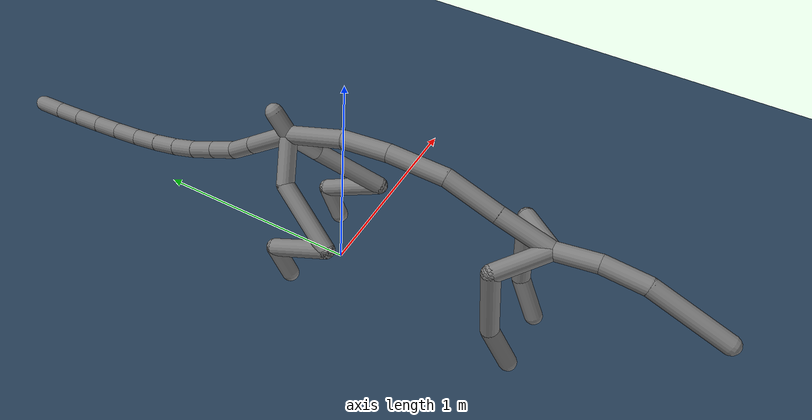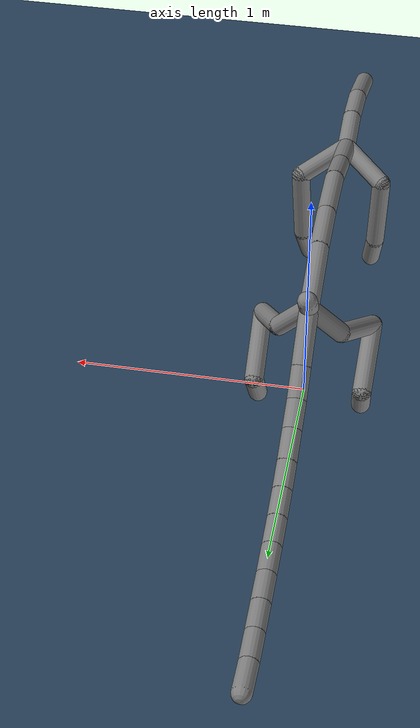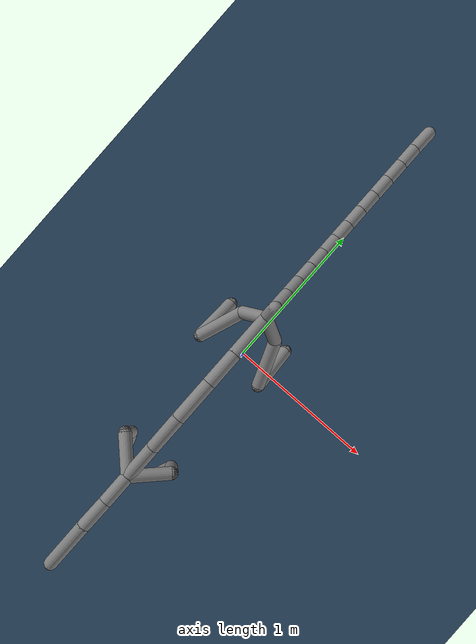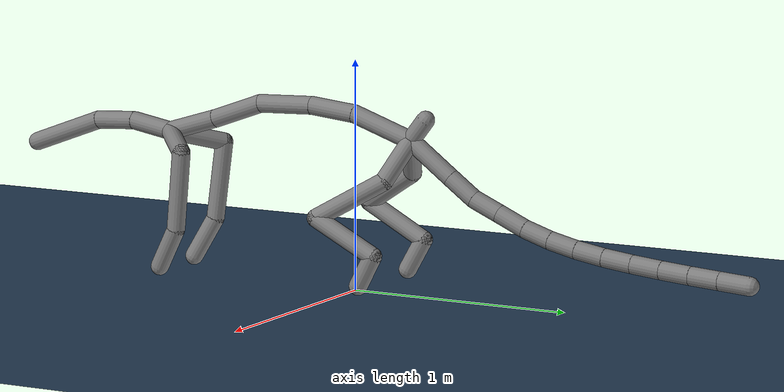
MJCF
<mujoco model="unnamed_model">
  <compiler angle="degree"/>
  <option timestep="0.001" integrator="implicitfast"/>
  <default>
    <default class="/">
      <tendon range="-1 1"/>
      <general ctrllimited="true" forcelimited="false" ctrlrange="-1 1" gainprm="10"/>
    </default>
  </default>
  <asset>
    <texture name="grid" type="2d" builtin="checker" rgb1="0.10000000000000001 0.20000000000000001 0.29999999999999999" rgb2="0.20000000000000001 0.29999999999999999 0.40000000000000002" width="512" height="512"/>
    <material name="grid" class="/" texture="grid" texrepeat="1 1" texuniform="true" reflectance="0.20000000000000001"/>
  </asset>
  <worldbody>
    <geom name="floor" class="/" type="plane" condim="3" size="0 0 0.050000000000000003" material="grid"/>
    <body name="Back_1" pos="-0.03638419508934021 0.32031768560409546 0.75876384973526001">
      <joint name="//unnamed_joint_0" class="/" type="free"/>
      <geom name="Back_1_geom" class="/" type="capsule" size="0.040000000000000001" fromto="0 0 0 0 -0.071091830730438232 -0.092527091503143311"/>
      <body name="Back_2" pos="0 -0.071091830730438232 -0.092527091503143311">
        <joint name="rx_Back_2" class="/" type="hinge" axis="1 0 0" stiffness="0.01" range="-9.9999997090929202 9.9999997090929202" damping="0.01"/>
        <joint name="ry_Back_2" class="/" type="hinge" axis="0 1 0" stiffness="0.01" range="-4.9999998545464601 4.9999998545464601" damping="0.01"/>
        <joint name="rz_Back_2" class="/" type="hinge" axis="0 0 1" stiffness="0.01" range="-9.9999997090929202 6.0000001669652114" damping="0.01"/>
        <geom name="Back_2_geom" class="/" type="capsule" size="0.040000000000000001" fromto="0 0 0 0 -0.2740018367767334 0.095168530941009521"/>
        <body name="Back_3" pos="0 -0.2740018367767334 0.095168530941009521">
          <joint name="rx_Back_3" class="/" type="hinge" axis="1 0 0" stiffness="0.01" range="-9.9999997090929202 9.9999997090929202" damping="0.01"/>
          <joint name="ry_Back_3" class="/" type="hinge" axis="0 1 0" stiffness="0.01" range="-4.9999998545464601 4.9999998545464601" damping="0.01"/>
          <joint name="rz_Back_3" class="/" type="hinge" axis="0 0 1" stiffness="0.01" range="-9.9999997090929202 6.0000001669652114" damping="0.01"/>
          <geom name="Back_3_geom" class="/" type="capsule" size="0.040000000000000001" fromto="0 0 0 0 -0.2097725123167038 0.021728336811065674"/>
          <body name="Back_4" pos="0 -0.2097725123167038 0.021728336811065674">
            <joint name="rx_Back_4" class="/" type="hinge" axis="1 0 0" stiffness="0.01" range="-9.9999997090929202 9.9999997090929202" damping="0.01"/>
            <joint name="ry_Back_4" class="/" type="hinge" axis="0 1 0" stiffness="0.01" range="-4.9999998545464601 4.9999998545464601" damping="0.01"/>
            <joint name="rz_Back_4" class="/" type="hinge" axis="0 0 1" stiffness="0.01" range="-9.9999997090929202 6.0000001669652114" damping="0.01"/>
            <geom name="Back_4_geom" class="/" type="capsule" size="0.040000000000000001" fromto="0 0 0 0 -0.25589346885681152 -0.0089598298072814941"/>
            <body name="Back_5" pos="0 -0.25589346885681152 -0.0089598298072814941">
              <joint name="rx_Back_5" class="/" type="hinge" axis="1 0 0" stiffness="0.01" range="-9.9999997090929202 9.9999997090929202" damping="0.01"/>
              <joint name="ry_Back_5" class="/" type="hinge" axis="0 1 0" stiffness="0.01" range="-4.9999998545464601 4.9999998545464601" damping="0.01"/>
              <joint name="rz_Back_5" class="/" type="hinge" axis="0 0 1" stiffness="0.01" range="-9.9999997090929202 6.0000001669652114" damping="0.01"/>
              <geom name="Back_5_geom" class="/" type="capsule" size="0.040000000000000001" fromto="0 0 0 0 -0.23085629940032959 -0.082915425300598145"/>
              <body name="Back_6" pos="0 -0.23085629940032959 -0.082915425300598145">
                <joint name="rx_Back_6" class="/" type="hinge" axis="1 0 0" stiffness="0.01" range="-9.9999997090929202 9.9999997090929202" damping="0.01"/>
                <joint name="ry_Back_6" class="/" type="hinge" axis="0 1 0" stiffness="0.01" range="-4.9999998545464601 4.9999998545464601" damping="0.01"/>
                <joint name="rz_Back_6" class="/" type="hinge" axis="0 0 1" stiffness="0.01" range="-9.9999997090929202 6.0000001669652114" damping="0.01"/>
                <geom name="Back_6_geom" class="/" type="capsule" size="0.040000000000000001" fromto="0 0 0 0 -0.23470097780227661 -0.07146763801574707"/>
                <body name="Neck" pos="0 -0.23470097780227661 -0.07146763801574707">
                  <geom name="Neck_geom" class="/" type="capsule" size="0.040000000000000001" density="100" fromto="0 0 0 0 -0.18661510944366455 0.033073067665100098"/>
                  <body name="Head" pos="0 -0.18661510944366455 0.033073067665100098">
                    <geom name="Head_geom" class="/" type="capsule" size="0.040000000000000001" density="100" fromto="0 0 0 -0.003004610538482666 -0.18622291088104248 -0.011018574237823486"/>
                    <body name="Nose" pos="-0.003004610538482666 -0.18622291088104248 -0.011018574237823486">
                      <geom name="Nose_geom" class="/" type="capsule" size="0.040000000000000001" density="100" fromto="0 0 0 7.4505805969238281e-09 -0.33017373085021973 -0.12187623977661133"/>
                    </body>
                    <site name="Head" class="/" type="box" size="0.002 0.002 0.002"/>
                  </body>
                </body>
                <body name="L_F_Paw_1" pos="0 -0.23470097780227661 -0.07146763801574707">
                  <joint name="rx_L_F_Paw_1" class="/" type="hinge" axis="1 0 0" stiffness="0.01" range="-30.000000834826057 30.000000834826057" damping="0.01"/>
                  <joint name="ry_L_F_Paw_1" class="/" type="hinge" axis="0 1 0" stiffness="0.01" range="-19.99999941818584 19.99999941818584" damping="0.01"/>
                  <joint name="rz_L_F_Paw_1" class="/" type="hinge" axis="0 0 1" stiffness="0.01" range="-30.000000834826057 30.000000834826057" damping="0.01"/>
                  <geom name="L_F_Paw_1_geom" class="/" type="capsule" size="0.040000000000000001" density="100" fromto="0 0 0 0.17953817546367645 0.16833937168121338 -0.060213387012481689"/>
                  <body name="L_F_Paw_2" pos="0.17953817546367645 0.16833937168121338 -0.060213387012481689">
                    <joint name="rx_L_F_Paw_2" class="/" type="hinge" axis="1 0 0" stiffness="0.01" range="-9.9999997090929202 9.9999997090929202" damping="0.01"/>
                    <joint name="rz_L_F_Paw_2" class="/" type="hinge" axis="0 0 1" stiffness="0.01" range="-45.00000125223908 45.00000125223908" damping="0.01"/>
                    <geom name="L_F_Paw_2_geom" class="/" type="capsule" size="0.040000000000000001" density="100" fromto="0 0 0 -0.014132246375083923 -0.039042651653289795 -0.34415319561958313"/>
                    <body name="L_F_Paw_3" pos="-0.014132246375083923 -0.039042651653289795 -0.34415319561958313">
                      <geom name="L_F_Paw_3_geom" class="/" type="capsule" size="0.040000000000000001" density="100" fromto="0 0 0 -0.021816067397594452 -0.098170757293701172 -0.17515115439891815"/>
                    </body>
                  </body>
                </body>
                <body name="R_F_Paw_1" pos="0 -0.23470097780227661 -0.07146763801574707">
                  <joint name="rx_R_F_Paw_1" class="/" type="hinge" axis="1 0 0" stiffness="0.01" range="-30.000000834826057 30.000000834826057" damping="0.01"/>
                  <joint name="ry_R_F_Paw_1" class="/" type="hinge" axis="0 1 0" stiffness="0.01" range="-19.99999941818584 19.99999941818584" damping="0.01"/>
                  <joint name="rz_R_F_Paw_1" class="/" type="hinge" axis="0 0 1" stiffness="0.01" range="-30.000000834826057 30.000000834826057" damping="0.01"/>
                  <geom name="R_F_Paw_1_geom" class="/" type="capsule" size="0.040000000000000001" density="100" fromto="0 0 0 -0.17953811585903168 0.16833937168121338 -0.060213387012481689"/>
                  <body name="R_F_Paw_2" pos="-0.17953811585903168 0.16833937168121338 -0.060213387012481689">
                    <joint name="rx_R_F_Paw_2" class="/" type="hinge" axis="1 0 0" stiffness="0.01" range="-9.9999997090929202 9.9999997090929202" damping="0.01"/>
                    <joint name="rz_R_F_Paw_2" class="/" type="hinge" axis="0 0 1" stiffness="0.01" range="-45.00000125223908 45.00000125223908" damping="0.01"/>
                    <geom name="R_F_Paw_2_geom" class="/" type="capsule" size="0.040000000000000001" density="100" fromto="0 0 0 0.014132246375083923 -0.039042651653289795 -0.34415331482887268"/>
                    <body name="R_F_Paw_3" pos="0.014132246375083923 -0.039042651653289795 -0.34415331482887268">
                      <geom name="R_F_Paw_3_geom" class="/" type="capsule" size="0.040000000000000001" density="100" fromto="0 0 0 0.021816074848175049 -0.098170638084411621 -0.17515107989311218"/>
                    </body>
                  </body>
                </body>
              </body>
            </body>
          </body>
        </body>
      </body>
      <body name="Tail_1" pos="0 -0.071091830730438232 -0.092527091503143311">
        <joint name="rx_Tail_1" class="/" type="hinge" axis="1 0 0" stiffness="0.01" range="-4.9999998545464601 4.9999998545464601" damping="0.01"/>
        <joint name="rz_Tail_1" class="/" type="hinge" axis="0 0 1" stiffness="0.01" range="-4.9999998545464601 4.9999998545464601" damping="0.01"/>
        <geom name="Tail_1_geom" class="/" type="capsule" size="0.040000000000000001" density="100" fromto="0 0 0 0 0.19382226467132568 -0.14527785778045654"/>
        <body name="Tail_2" pos="0 0.19382226467132568 -0.14527785778045654">
          <joint name="rx_Tail_2" class="/" type="hinge" axis="1 0 0" stiffness="0.01" range="-4.9999998545464601 4.9999998545464601" damping="0.01"/>
          <joint name="rz_Tail_2" class="/" type="hinge" axis="0 0 1" stiffness="0.01" range="-4.9999998545464601 4.9999998545464601" damping="0.01"/>
          <geom name="Tail_2_geom" class="/" type="capsule" size="0.040000000000000001" density="100" fromto="0 0 0 0 0.11086165904998779 -0.08177107572555542"/>
          <body name="Tail_3" pos="0 0.11086165904998779 -0.08177107572555542">
            <joint name="rx_Tail_3" class="/" type="hinge" axis="1 0 0" stiffness="0.01" range="-4.9999998545464601 4.9999998545464601" damping="0.01"/>
            <joint name="rz_Tail_3" class="/" type="hinge" axis="0 0 1" stiffness="0.01" range="-4.9999998545464601 4.9999998545464601" damping="0.01"/>
            <geom name="Tail_3_geom" class="/" type="capsule" size="0.040000000000000001" density="100" fromto="0 0 0 0 0.11859244108200073 -0.052198827266693115"/>
            <body name="Tail_4" pos="0 0.11859244108200073 -0.052198827266693115">
              <joint name="rx_Tail_4" class="/" type="hinge" axis="1 0 0" stiffness="0.01" range="-4.9999998545464601 4.9999998545464601" damping="0.01"/>
              <joint name="rz_Tail_4" class="/" type="hinge" axis="0 0 1" stiffness="0.01" range="-4.9999998545464601 4.9999998545464601" damping="0.01"/>
              <geom name="Tail_4_geom" class="/" type="capsule" size="0.040000000000000001" density="100" fromto="0 0 0 0 0.12198221683502197 -0.054768264293670654"/>
              <body name="Tail_5" pos="0 0.12198221683502197 -0.054768264293670654">
                <joint name="rx_Tail_5" class="/" type="hinge" axis="1 0 0" stiffness="0.01" range="-4.9999998545464601 4.9999998545464601" damping="0.01"/>
                <joint name="rz_Tail_5" class="/" type="hinge" axis="0 0 1" stiffness="0.01" range="-4.9999998545464601 4.9999998545464601" damping="0.01"/>
                <geom name="Tail_5_geom" class="/" type="capsule" size="0.040000000000000001" density="100" fromto="0 0 0 0 0.11853504180908203 -0.038582384586334229"/>
                <body name="Tail_6" pos="0 0.11853504180908203 -0.038582384586334229">
                  <joint name="rx_Tail_6" class="/" type="hinge" axis="1 0 0" stiffness="0.01" range="-4.9999998545464601 4.9999998545464601" damping="0.01"/>
                  <joint name="rz_Tail_6" class="/" type="hinge" axis="0 0 1" stiffness="0.01" range="-4.9999998545464601 4.9999998545464601" damping="0.01"/>
                  <geom name="Tail_6_geom" class="/" type="capsule" size="0.040000000000000001" density="100" fromto="0 0 0 0 0.12328189611434937 -0.029072761535644531"/>
                  <body name="Tail_7" pos="0 0.12328189611434937 -0.029072761535644531">
                    <joint name="rx_Tail_7" class="/" type="hinge" axis="1 0 0" stiffness="0.01" range="-4.9999998545464601 4.9999998545464601" damping="0.01"/>
                    <joint name="rz_Tail_7" class="/" type="hinge" axis="0 0 1" stiffness="0.01" range="-4.9999998545464601 4.9999998545464601" damping="0.01"/>
                    <geom name="Tail_7_geom" class="/" type="capsule" size="0.040000000000000001" density="100" fromto="0 0 0 0 0.12698960304260254 -0.021487578749656677"/>
                    <body name="Tail_8" pos="0 0.12698960304260254 -0.021487578749656677">
                      <joint name="rx_Tail_8" class="/" type="hinge" axis="1 0 0" stiffness="0.01" range="-4.9999998545464601 4.9999998545464601" damping="0.01"/>
                      <joint name="rz_Tail_8" class="/" type="hinge" axis="0 0 1" stiffness="0.01" range="-4.9999998545464601 4.9999998545464601" damping="0.01"/>
                      <geom name="Tail_8_geom" class="/" type="capsule" size="0.040000000000000001" density="100" fromto="0 0 0 0 0.12981581687927246 -0.01584780216217041"/>
                      <body name="Tail_9" pos="0 0.12981581687927246 -0.01584780216217041">
                        <joint name="rx_Tail_9" class="/" type="hinge" axis="1 0 0" stiffness="0.01" range="-4.9999998545464601 4.9999998545464601" damping="0.01"/>
                        <joint name="rz_Tail_9" class="/" type="hinge" axis="0 0 1" stiffness="0.01" range="-4.9999998545464601 4.9999998545464601" damping="0.01"/>
                        <geom name="Tail_9_geom" class="/" type="capsule" size="0.040000000000000001" density="100" fromto="0 0 0 0 0.13128519058227539 -0.013129889965057373"/>
                        <body name="Tail_10" pos="0 0.13128519058227539 -0.013129889965057373">
                          <joint name="rx_Tail_10" class="/" type="hinge" axis="1 0 0" stiffness="0.01" range="-4.9999998545464601 4.9999998545464601" damping="0.01"/>
                          <joint name="rz_Tail_10" class="/" type="hinge" axis="0 0 1" stiffness="0.01" range="-4.9999998545464601 4.9999998545464601" damping="0.01"/>
                          <geom name="Tail_10_geom" class="/" type="capsule" size="0.040000000000000001" density="100" fromto="0 0 0 0 0.13169467449188232 -0.011130914092063904"/>
                          <body name="Tail_11" pos="0 0.13169467449188232 -0.011130914092063904">
                            <joint name="rx_Tail_11" class="/" type="hinge" axis="1 0 0" stiffness="0.01" range="-4.9999998545464601 4.9999998545464601" damping="0.01"/>
                            <joint name="rz_Tail_11" class="/" type="hinge" axis="0 0 1" stiffness="0.01" range="-4.9999998545464601 4.9999998545464601" damping="0.01"/>
                            <geom name="Tail_11_geom" class="/" type="capsule" size="0.040000000000000001" density="100" fromto="0 0 0 0 0.13223564624786377 -0.0094667375087738037"/>
                            <body name="Tail_12" pos="0 0.13223564624786377 -0.0094667375087738037">
                              <joint name="rx_Tail_12" class="/" type="hinge" axis="1 0 0" stiffness="0.01" range="-4.9999998545464601 4.9999998545464601" damping="0.01"/>
                              <joint name="rz_Tail_12" class="/" type="hinge" axis="0 0 1" stiffness="0.01" range="-4.9999998545464601 4.9999998545464601" damping="0.01"/>
                              <geom name="Tail_12_geom" class="/" type="capsule" size="0.040000000000000001" density="100" fromto="0 0 0 0.0029128193855285645 0.1335829496383667 -0.0088426172733306885"/>
                            </body>
                          </body>
                        </body>
                      </body>
                    </body>
                  </body>
                </body>
              </body>
            </body>
          </body>
        </body>
      </body>
      <body name="R_B_Paw_1" pos="0 -0.071091830730438232 -0.092527091503143311">
        <joint name="rx_R_B_Paw_1" class="/" type="hinge" axis="1 0 0" stiffness="0.01" range="-39.999998836371681 39.999998836371681" damping="0.01"/>
        <joint name="ry_R_B_Paw_1" class="/" type="hinge" axis="0 1 0" stiffness="0.01" range="-9.9999997090929202 19.99999941818584" damping="0.01"/>
        <joint name="rz_R_B_Paw_1" class="/" type="hinge" axis="0 0 1" stiffness="0.01" range="-9.9999997090929202 19.99999941818584" damping="0.01"/>
        <geom name="R_B_Paw_1_geom" class="/" type="capsule" size="0.040000000000000001" density="100" fromto="0 0 0 -0.12856116890907288 -0.060687735676765442 -0.1629948616027832"/>
        <body name="R_B_Paw_2" pos="-0.12856116890907288 -0.060687735676765442 -0.1629948616027832">
          <joint name="rx_R_B_Paw_2" class="/" type="hinge" axis="1 0 0" stiffness="0.01" range="-45.00000125223908 50.000000253011898" damping="0.01"/>
          <joint name="rz_R_B_Paw_2" class="/" type="hinge" axis="0 0 1" stiffness="0.01" range="-25.999999585151052 19.99999941818584" damping="0.01"/>
          <geom name="R_B_Paw_2_geom" class="/" type="capsule" size="0.040000000000000001" density="100" fromto="0 0 0 -0.1057131290435791 -0.26967060565948486 -0.16305962204933167"/>
          <body name="R_B_Paw_3" pos="-0.1057131290435791 -0.26967060565948486 -0.16305962204933167">
            <geom name="R_B_Paw_3_geom" class="/" type="capsule" size="0.040000000000000001" density="100" fromto="0 0 0 0.007300645112991333 0.27059853076934814 -0.14332710206508636"/>
            <body name="R_B_Paw_4" pos="0.007300645112991333 0.27059853076934814 -0.14332710206508636">
              <geom name="R_B_Paw_4_geom" class="/" type="capsule" size="0.040000000000000001" density="100" fromto="0 0 0 0.006926417350769043 -0.073839575052261353 -0.13510023057460785"/>
            </body>
          </body>
        </body>
      </body>
      <body name="L_B_Paw_1" pos="0 -0.071091830730438232 -0.092527091503143311">
        <joint name="rx_L_B_Paw_1" class="/" type="hinge" axis="1 0 0" stiffness="0.01" range="-39.999998836371681 39.999998836371681" damping="0.01"/>
        <joint name="ry_L_B_Paw_1" class="/" type="hinge" axis="0 1 0" stiffness="0.01" range="-9.9999997090929202 19.99999941818584" damping="0.01"/>
        <joint name="rz_L_B_Paw_1" class="/" type="hinge" axis="0 0 1" stiffness="0.01" range="-19.99999941818584 9.9999997090929202" damping="0.01"/>
        <geom name="L_B_Paw_1_geom" class="/" type="capsule" size="0.040000000000000001" density="100" fromto="0 0 0 0.12856115400791168 -0.060687720775604248 -0.1629948616027832"/>
        <body name="L_B_Paw_2" pos="0.12856115400791168 -0.060687720775604248 -0.1629948616027832">
          <joint name="rx_L_B_Paw_2" class="/" type="hinge" axis="1 0 0" stiffness="0.01" range="-45.00000125223908 50.000000253011898" damping="0.01"/>
          <joint name="rz_L_B_Paw_2" class="/" type="hinge" axis="0 0 1" stiffness="0.01" range="-19.99999941818584 25.999999585151052" damping="0.01"/>
          <geom name="L_B_Paw_2_geom" class="/" type="capsule" size="0.040000000000000001" density="100" fromto="0 0 0 0.10558734834194183 -0.26967060565948486 -0.16305959224700928"/>
          <body name="L_B_Paw_3" pos="0.10558734834194183 -0.26967060565948486 -0.16305959224700928">
            <geom name="L_B_Paw_3_geom" class="/" type="capsule" size="0.040000000000000001" density="100" fromto="0 0 0 -0.0073006749153137207 0.27059853076934814 -0.14332720637321472"/>
            <body name="L_B_Paw_4" pos="-0.0073006749153137207 0.27059853076934814 -0.14332720637321472">
              <geom name="L_B_Paw_4_geom" class="/" type="capsule" size="0.040000000000000001" density="100" fromto="0 0 0 -0.0068006217479705811 -0.073839545249938965 -0.13510014116764069"/>
            </body>
          </body>
        </body>
      </body>
    </body>
    <camera name="cam0" class="/" mode="trackcom" pos="5 -17 7" xyaxes="1 0.25 0 0 0.29999999999999999 1"/>
  </worldbody>
  <tendon>
    <fixed name="back_x" class="/">
      <joint joint="rx_Back_2" coef="1"/>
      <joint joint="rx_Back_3" coef="1"/>
      <joint joint="rx_Back_4" coef="1"/>
      <joint joint="rx_Back_5" coef="1"/>
      <joint joint="rx_Back_6" coef="1"/>
    </fixed>
    <fixed name="back_y" class="/">
      <joint joint="ry_Back_2" coef="1"/>
      <joint joint="ry_Back_3" coef="1"/>
      <joint joint="ry_Back_4" coef="1"/>
      <joint joint="ry_Back_5" coef="1"/>
      <joint joint="ry_Back_6" coef="1"/>
    </fixed>
    <fixed name="back_z" class="/">
      <joint joint="rz_Back_2" coef="1"/>
      <joint joint="rz_Back_3" coef="1"/>
      <joint joint="rz_Back_4" coef="1"/>
      <joint joint="rz_Back_5" coef="1"/>
      <joint joint="rz_Back_6" coef="1"/>
    </fixed>
    <fixed name="tail_x" class="/">
      <joint joint="rx_Tail_1" coef="1"/>
      <joint joint="rx_Tail_2" coef="1"/>
      <joint joint="rx_Tail_3" coef="1"/>
      <joint joint="rx_Tail_4" coef="1"/>
      <joint joint="rx_Tail_5" coef="1"/>
      <joint joint="rx_Tail_6" coef="1"/>
      <joint joint="rx_Tail_7" coef="1"/>
      <joint joint="rx_Tail_8" coef="1"/>
      <joint joint="rx_Tail_9" coef="1"/>
      <joint joint="rx_Tail_10" coef="1"/>
      <joint joint="rx_Tail_11" coef="1"/>
      <joint joint="rx_Tail_12" coef="1"/>
    </fixed>
    <fixed name="tail_z" class="/">
      <joint joint="rz_Tail_1" coef="1"/>
      <joint joint="rz_Tail_2" coef="1"/>
      <joint joint="rz_Tail_3" coef="1"/>
      <joint joint="rz_Tail_4" coef="1"/>
      <joint joint="rz_Tail_5" coef="1"/>
      <joint joint="rz_Tail_6" coef="1"/>
      <joint joint="rz_Tail_7" coef="1"/>
      <joint joint="rz_Tail_8" coef="1"/>
      <joint joint="rz_Tail_9" coef="1"/>
      <joint joint="rz_Tail_10" coef="1"/>
      <joint joint="rz_Tail_11" coef="1"/>
      <joint joint="rz_Tail_12" coef="1"/>
    </fixed>
  </tendon>
  <actuator>
    <motor name="rx_L_F_Paw_1_motor" class="/" gear="30" joint="rx_L_F_Paw_1"/>
    <motor name="ry_L_F_Paw_1_motor" class="/" gear="30" joint="ry_L_F_Paw_1"/>
    <motor name="rz_L_F_Paw_1_motor" class="/" gear="30" joint="rz_L_F_Paw_1"/>
    <motor name="rx_L_F_Paw_2_motor" class="/" gear="30" joint="rx_L_F_Paw_2"/>
    <motor name="rz_L_F_Paw_2_motor" class="/" gear="30" joint="rz_L_F_Paw_2"/>
    <motor name="rx_R_F_Paw_1_motor" class="/" gear="30" joint="rx_R_F_Paw_1"/>
    <motor name="ry_R_F_Paw_1_motor" class="/" gear="30" joint="ry_R_F_Paw_1"/>
    <motor name="rz_R_F_Paw_1_motor" class="/" gear="30" joint="rz_R_F_Paw_1"/>
    <motor name="rx_R_F_Paw_2_motor" class="/" gear="30" joint="rx_R_F_Paw_2"/>
    <motor name="rz_R_F_Paw_2_motor" class="/" gear="30" joint="rz_R_F_Paw_2"/>
    <motor name="rx_R_B_Paw_1_motor" class="/" gear="30" joint="rx_R_B_Paw_1"/>
    <motor name="ry_R_B_Paw_1_motor" class="/" gear="30" joint="ry_R_B_Paw_1"/>
    <motor name="rz_R_B_Paw_1_motor" class="/" gear="30" joint="rz_R_B_Paw_1"/>
    <motor name="rx_R_B_Paw_2_motor" class="/" gear="30" joint="rx_R_B_Paw_2"/>
    <motor name="rz_R_B_Paw_2_motor" class="/" gear="30" joint="rz_R_B_Paw_2"/>
    <motor name="rx_L_B_Paw_1_motor" class="/" gear="30" joint="rx_L_B_Paw_1"/>
    <motor name="ry_L_B_Paw_1_motor" class="/" gear="30" joint="ry_L_B_Paw_1"/>
    <motor name="rz_L_B_Paw_1_motor" class="/" gear="30" joint="rz_L_B_Paw_1"/>
    <motor name="rx_L_B_Paw_2_motor" class="/" gear="30" joint="rx_L_B_Paw_2"/>
    <motor name="rz_L_B_Paw_2_motor" class="/" gear="30" joint="rz_L_B_Paw_2"/>
    <general name="back_x_motor" class="/" tendon="back_x" gainprm="10"/>
    <general name="back_z_motor" class="/" tendon="back_z" gainprm="10"/>
    <general name="tail_x_motor" class="/" tendon="tail_x" gainprm="10"/>
    <general name="tail_z_motor" class="/" tendon="tail_z" gainprm="10"/>
    <general name="back_y_motor" class="/" tendon="back_y" gainprm="10"/>
  </actuator>
  <sensor>
    <accelerometer name="accelerometer" site="Head"/>
    <velocimeter name="velocimeter" site="Head"/>
    <gyro name="gyro" site="Head"/>
  </sensor>
</mujoco>
